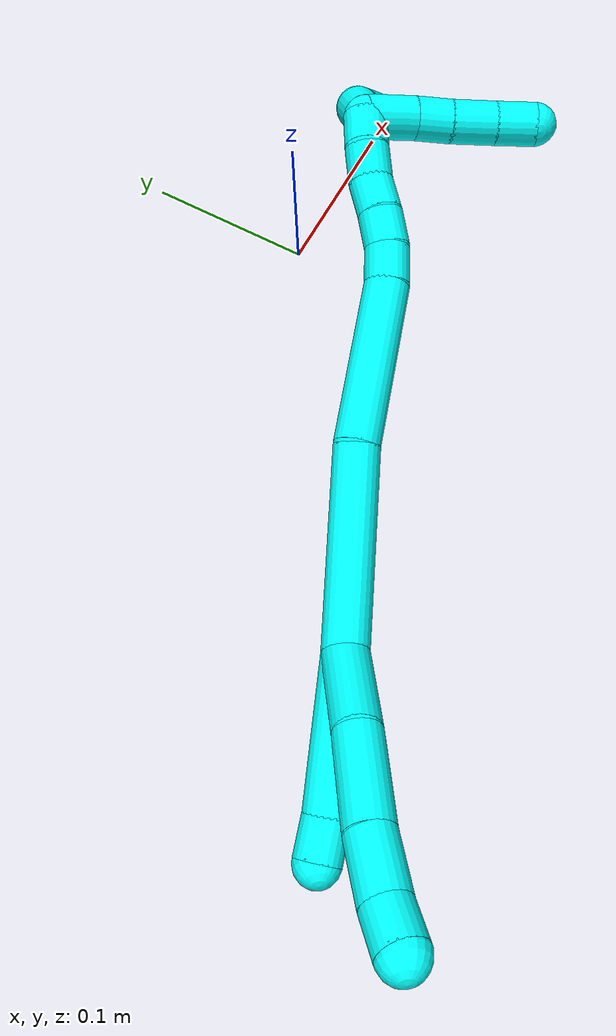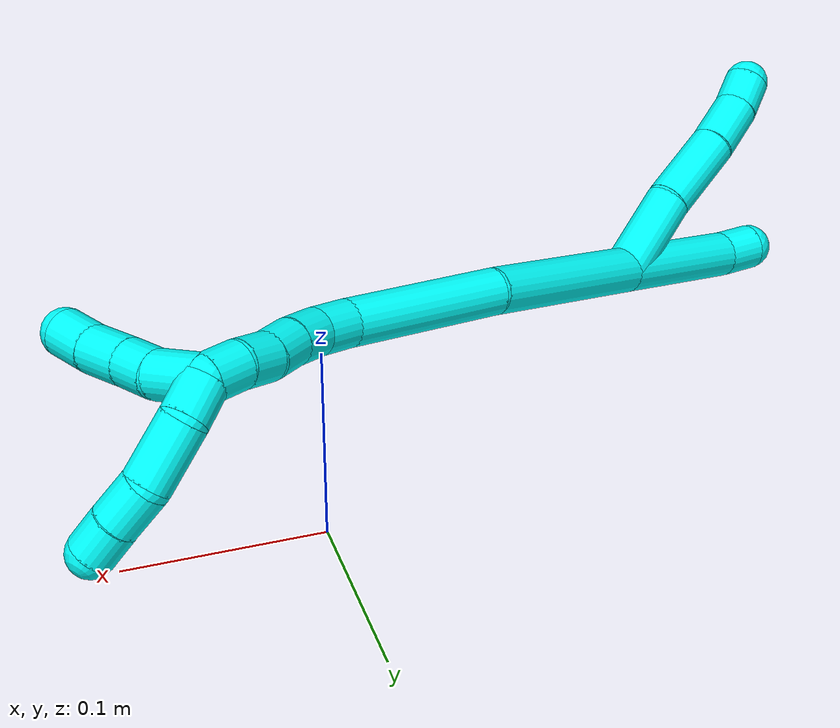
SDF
<sdf version="1.7">
 <world name="default">
  <model name="3">
   <static>0</static>
   <link name="3">
    <collision name="collision-cylinder-e_1_2_8">
     <pose>0.000154 -8.2e-05 0.024659 0.003306 0.006255 1e-05</pose>
     <geometry><cylinder><radius>0.0125</radius><length>0.049318</length></cylinder></geometry>
     <surface>
      <friction><ode><mu>1.16</mu><mu2>1.16</mu2><slip1>0</slip1><slip2>0</slip2></ode></friction>
      <contact><ode><kp>1e+06</kp><kd>1</kd><max_vel>0</max_vel><min_depth>0.001</min_depth></ode></contact>
     </surface>
    </collision>
    <visual name="visual-cylinder-e_1_2_8">
     <pose>0.000154 -8.2e-05 0.024659 0.003306 0.006255 1e-05</pose>
     <geometry><cylinder><radius>0.0125</radius><length>0.049318</length></cylinder></geometry>
     <material><ambient>0.003922 1 0.996078 1</ambient></material>
    </visual>
    <collision name="collision-cylinder-e_2_8_9">
     <pose>-0.0031 -0.001575 0.073221 0.059018 -0.141407 -0.004181</pose>
     <geometry><cylinder><radius>0.0125</radius><length>0.048375</length></cylinder></geometry>
     <surface>
      <friction><ode><mu>1.16</mu><mu2>1.16</mu2><slip1>0</slip1><slip2>0</slip2></ode></friction>
      <contact><ode><kp>1e+06</kp><kd>1</kd><max_vel>0</max_vel><min_depth>0.001</min_depth></ode></contact>
     </surface>
    </collision>
    <visual name="visual-cylinder-e_2_8_9">
     <pose>-0.0031 -0.001575 0.073221 0.059018 -0.141407 -0.004181</pose>
     <geometry><cylinder><radius>0.0125</radius><length>0.048375</length></cylinder></geometry>
     <material><ambient>0.003922 1 0.996078 1</ambient></material>
    </visual>
    <collision name="collision-cylinder-e_3_9_10">
     <pose>-0.008144 -0.005267 0.11253 0.146884 -0.104605 -0.007703</pose>
     <geometry><cylinder><radius>0.0125</radius><length>0.031315</length></cylinder></geometry>
     <surface>
      <friction><ode><mu>1.16</mu><mu2>1.16</mu2><slip1>0</slip1><slip2>0</slip2></ode></friction>
      <contact><ode><kp>1e+06</kp><kd>1</kd><max_vel>0</max_vel><min_depth>0.001</min_depth></ode></contact>
     </surface>
    </collision>
    <visual name="visual-cylinder-e_3_9_10">
     <pose>-0.008144 -0.005267 0.11253 0.146884 -0.104605 -0.007703</pose>
     <geometry><cylinder><radius>0.0125</radius><length>0.031315</length></cylinder></geometry>
     <material><ambient>0.003922 1 0.996078 1</ambient></material>
    </visual>
    <collision name="collision-cylinder-e_4_10_6">
     <pose>-0.009192 -0.009288 0.138268 0.167001 0.055947 0.004684</pose>
     <geometry><cylinder><radius>0.0125</radius><length>0.020992</length></cylinder></geometry>
     <surface>
      <friction><ode><mu>1.16</mu><mu2>1.16</mu2><slip1>0</slip1><slip2>0</slip2></ode></friction>
      <contact><ode><kp>1e+06</kp><kd>1</kd><max_vel>0</max_vel><min_depth>0.001</min_depth></ode></contact>
     </surface>
    </collision>
    <visual name="visual-cylinder-e_4_10_6">
     <pose>-0.009192 -0.009288 0.138268 0.167001 0.055947 0.004684</pose>
     <geometry><cylinder><radius>0.0125</radius><length>0.020992</length></cylinder></geometry>
     <material><ambient>0.003922 1 0.996078 1</ambient></material>
    </visual>
    <collision name="collision-cylinder-e_1_2_11">
     <pose>-0.027167 -0.003998 0.027951 0.142058 -0.766112 -0.057325</pose>
     <geometry><cylinder><radius>0.0125</radius><length>0.078366</length></cylinder></geometry>
     <surface>
      <friction><ode><mu>1.16</mu><mu2>1.16</mu2><slip1>0</slip1><slip2>0</slip2></ode></friction>
      <contact><ode><kp>1e+06</kp><kd>1</kd><max_vel>0</max_vel><min_depth>0.001</min_depth></ode></contact>
     </surface>
    </collision>
    <visual name="visual-cylinder-e_1_2_11">
     <pose>-0.027167 -0.003998 0.027951 0.142058 -0.766112 -0.057325</pose>
     <geometry><cylinder><radius>0.0125</radius><length>0.078366</length></cylinder></geometry>
     <material><ambient>0.003922 1 0.996078 1</ambient></material>
    </visual>
    <collision name="collision-cylinder-e_2_11_5">
     <pose>-0.061088 -0.007575 0.064341 -0.049777 -0.674359 0.017453</pose>
     <geometry><cylinder><radius>0.0125</radius><length>0.021634</length></cylinder></geometry>
     <surface>
      <friction><ode><mu>1.16</mu><mu2>1.16</mu2><slip1>0</slip1><slip2>0</slip2></ode></friction>
      <contact><ode><kp>1e+06</kp><kd>1</kd><max_vel>0</max_vel><min_depth>0.001</min_depth></ode></contact>
     </surface>
    </collision>
    <visual name="visual-cylinder-e_2_11_5">
     <pose>-0.061088 -0.007575 0.064341 -0.049777 -0.674359 0.017453</pose>
     <geometry><cylinder><radius>0.0125</radius><length>0.021634</length></cylinder></geometry>
     <material><ambient>0.003922 1 0.996078 1</ambient></material>
    </visual>
    <collision name="collision-cylinder-e_1_2_12">
     <pose>0.03641 0.008818 -0.037061 -2.90801 0.762776 -2.57234</pose>
     <geometry><cylinder><radius>0.0125</radius><length>0.105394</length></cylinder></geometry>
     <surface>
      <friction><ode><mu>1.16</mu><mu2>1.16</mu2><slip1>0</slip1><slip2>0</slip2></ode></friction>
      <contact><ode><kp>1e+06</kp><kd>1</kd><max_vel>0</max_vel><min_depth>0.001</min_depth></ode></contact>
     </surface>
    </collision>
    <visual name="visual-cylinder-e_1_2_12">
     <pose>0.03641 0.008818 -0.037061 -2.90801 0.762776 -2.57234</pose>
     <geometry><cylinder><radius>0.0125</radius><length>0.105394</length></cylinder></geometry>
     <material><ambient>0.003922 1 0.996078 1</ambient></material>
    </visual>
    <collision name="collision-cylinder-e_2_12_13">
     <pose>0.10303 0.018107 -0.108616 -3.12794 0.719249 -3.10529</pose>
     <geometry><cylinder><radius>0.0125</radius><length>0.09171</length></cylinder></geometry>
     <surface>
      <friction><ode><mu>1.16</mu><mu2>1.16</mu2><slip1>0</slip1><slip2>0</slip2></ode></friction>
      <contact><ode><kp>1e+06</kp><kd>1</kd><max_vel>0</max_vel><min_depth>0.001</min_depth></ode></contact>
     </surface>
    </collision>
    <visual name="visual-cylinder-e_2_12_13">
     <pose>0.10303 0.018107 -0.108616 -3.12794 0.719249 -3.10529</pose>
     <geometry><cylinder><radius>0.0125</radius><length>0.09171</length></cylinder></geometry>
     <material><ambient>0.003922 1 0.996078 1</ambient></material>
    </visual>
    <collision name="collision-cylinder-e_3_13_14">
     <pose>0.140005 0.020502 -0.151147 -2.9066 0.685943 -2.50307</pose>
     <geometry><cylinder><radius>0.0125</radius><length>0.021362</length></cylinder></geometry>
     <surface>
      <friction><ode><mu>1.16</mu><mu2>1.16</mu2><slip1>0</slip1><slip2>0</slip2></ode></friction>
      <contact><ode><kp>1e+06</kp><kd>1</kd><max_vel>0</max_vel><min_depth>0.001</min_depth></ode></contact>
     </surface>
    </collision>
    <visual name="visual-cylinder-e_3_13_14">
     <pose>0.140005 0.020502 -0.151147 -2.9066 0.685943 -2.50307</pose>
     <geometry><cylinder><radius>0.0125</radius><length>0.021362</length></cylinder></geometry>
     <material><ambient>0.003922 1 0.996078 1</ambient></material>
    </visual>
    <collision name="collision-cylinder-e_4_14_15">
     <pose>0.15252 0.026176 -0.166694 -2.67843 0.600607 -1.83995</pose>
     <geometry><cylinder><radius>0.0125</radius><length>0.020347</length></cylinder></geometry>
     <surface>
      <friction><ode><mu>1.16</mu><mu2>1.16</mu2><slip1>0</slip1><slip2>0</slip2></ode></friction>
      <contact><ode><kp>1e+06</kp><kd>1</kd><max_vel>0</max_vel><min_depth>0.001</min_depth></ode></contact>
     </surface>
    </collision>
    <visual name="visual-cylinder-e_4_14_15">
     <pose>0.15252 0.026176 -0.166694 -2.67843 0.600607 -1.83995</pose>
     <geometry><cylinder><radius>0.0125</radius><length>0.020347</length></cylinder></geometry>
     <material><ambient>0.003922 1 0.996078 1</ambient></material>
    </visual>
    <collision name="collision-cylinder-e_5_15_16">
     <pose>0.163049 0.033916 -0.182097 -2.67368 0.495409 -1.63013</pose>
     <geometry><cylinder><radius>0.0125</radius><length>0.020107</length></cylinder></geometry>
     <surface>
      <friction><ode><mu>1.16</mu><mu2>1.16</mu2><slip1>0</slip1><slip2>0</slip2></ode></friction>
      <contact><ode><kp>1e+06</kp><kd>1</kd><max_vel>0</max_vel><min_depth>0.001</min_depth></ode></contact>
     </surface>
    </collision>
    <visual name="visual-cylinder-e_5_15_16">
     <pose>0.163049 0.033916 -0.182097 -2.67368 0.495409 -1.63013</pose>
     <geometry><cylinder><radius>0.0125</radius><length>0.020107</length></cylinder></geometry>
     <material><ambient>0.003922 1 0.996078 1</ambient></material>
    </visual>
    <collision name="collision-cylinder-e_6_16_17">
     <pose>0.174152 0.041078 -0.197173 -2.72556 0.677999 -2.06283</pose>
     <geometry><cylinder><radius>0.0125</radius><length>0.02016</length></cylinder></geometry>
     <surface>
      <friction><ode><mu>1.16</mu><mu2>1.16</mu2><slip1>0</slip1><slip2>0</slip2></ode></friction>
      <contact><ode><kp>1e+06</kp><kd>1</kd><max_vel>0</max_vel><min_depth>0.001</min_depth></ode></contact>
     </surface>
    </collision>
    <visual name="visual-cylinder-e_6_16_17">
     <pose>0.174152 0.041078 -0.197173 -2.72556 0.677999 -2.06283</pose>
     <geometry><cylinder><radius>0.0125</radius><length>0.02016</length></cylinder></geometry>
     <material><ambient>0.003922 1 0.996078 1</ambient></material>
    </visual>
    <collision name="collision-cylinder-e_7_17_1">
     <pose>0.186125 0.046191 -0.212939 -2.91928 0.57071 -2.41446</pose>
     <geometry><cylinder><radius>0.0125</radius><length>0.020919</length></cylinder></geometry>
     <surface>
      <friction><ode><mu>1.16</mu><mu2>1.16</mu2><slip1>0</slip1><slip2>0</slip2></ode></friction>
      <contact><ode><kp>1e+06</kp><kd>1</kd><max_vel>0</max_vel><min_depth>0.001</min_depth></ode></contact>
     </surface>
    </collision>
    <visual name="visual-cylinder-e_7_17_1">
     <pose>0.186125 0.046191 -0.212939 -2.91928 0.57071 -2.41446</pose>
     <geometry><cylinder><radius>0.0125</radius><length>0.020919</length></cylinder></geometry>
     <material><ambient>0.003922 1 0.996078 1</ambient></material>
    </visual>
    <collision name="collision-cylinder-e_1_1_18">
     <pose>0.196063 0.034115 -0.224075 1.75078 0.292328 0.349241</pose>
     <geometry><cylinder><radius>0.0125</radius><length>0.029756</length></cylinder></geometry>
     <surface>
      <friction><ode><mu>1.16</mu><mu2>1.16</mu2><slip1>0</slip1><slip2>0</slip2></ode></friction>
      <contact><ode><kp>1e+06</kp><kd>1</kd><max_vel>0</max_vel><min_depth>0.001</min_depth></ode></contact>
     </surface>
    </collision>
    <visual name="visual-cylinder-e_1_1_18">
     <pose>0.196063 0.034115 -0.224075 1.75078 0.292328 0.349241</pose>
     <geometry><cylinder><radius>0.0125</radius><length>0.029756</length></cylinder></geometry>
     <material><ambient>0.003922 1 0.996078 1</ambient></material>
    </visual>
    <collision name="collision-cylinder-e_2_18_19">
     <pose>0.20358 0.010123 -0.226102 1.51835 0.312679 0.296934</pose>
     <geometry><cylinder><radius>0.0125</radius><length>0.020998</length></cylinder></geometry>
     <surface>
      <friction><ode><mu>1.16</mu><mu2>1.16</mu2><slip1>0</slip1><slip2>0</slip2></ode></friction>
      <contact><ode><kp>1e+06</kp><kd>1</kd><max_vel>0</max_vel><min_depth>0.001</min_depth></ode></contact>
     </surface>
    </collision>
    <visual name="visual-cylinder-e_2_18_19">
     <pose>0.20358 0.010123 -0.226102 1.51835 0.312679 0.296934</pose>
     <geometry><cylinder><radius>0.0125</radius><length>0.020998</length></cylinder></geometry>
     <material><ambient>0.003922 1 0.996078 1</ambient></material>
    </visual>
    <collision name="collision-cylinder-e_3_19_20">
     <pose>0.211309 -0.012139 -0.22543 1.55876 0.351027 0.346913</pose>
     <geometry><cylinder><radius>0.0125</radius><length>0.02617</length></cylinder></geometry>
     <surface>
      <friction><ode><mu>1.16</mu><mu2>1.16</mu2><slip1>0</slip1><slip2>0</slip2></ode></friction>
      <contact><ode><kp>1e+06</kp><kd>1</kd><max_vel>0</max_vel><min_depth>0.001</min_depth></ode></contact>
     </surface>
    </collision>
    <visual name="visual-cylinder-e_3_19_20">
     <pose>0.211309 -0.012139 -0.22543 1.55876 0.351027 0.346913</pose>
     <geometry><cylinder><radius>0.0125</radius><length>0.02617</length></cylinder></geometry>
     <material><ambient>0.003922 1 0.996078 1</ambient></material>
    </visual>
    <collision name="collision-cylinder-e_4_20_4">
     <pose>0.22024 -0.035005 -0.224036 1.45353 0.394243 0.351475</pose>
     <geometry><cylinder><radius>0.0125</radius><length>0.023077</length></cylinder></geometry>
     <surface>
      <friction><ode><mu>1.16</mu><mu2>1.16</mu2><slip1>0</slip1><slip2>0</slip2></ode></friction>
      <contact><ode><kp>1e+06</kp><kd>1</kd><max_vel>0</max_vel><min_depth>0.001</min_depth></ode></contact>
     </surface>
    </collision>
    <visual name="visual-cylinder-e_4_20_4">
     <pose>0.22024 -0.035005 -0.224036 1.45353 0.394243 0.351475</pose>
     <geometry><cylinder><radius>0.0125</radius><length>0.023077</length></cylinder></geometry>
     <material><ambient>0.003922 1 0.996078 1</ambient></material>
    </visual>
    <collision name="collision-cylinder-e_1_1_21">
     <pose>0.190453 0.048521 -0.231961 -3.10433 -0.125953 2.56697</pose>
     <geometry><cylinder><radius>0.0125</radius><length>0.021055</length></cylinder></geometry>
     <surface>
      <friction><ode><mu>1.16</mu><mu2>1.16</mu2><slip1>0</slip1><slip2>0</slip2></ode></friction>
      <contact><ode><kp>1e+06</kp><kd>1</kd><max_vel>0</max_vel><min_depth>0.001</min_depth></ode></contact>
     </surface>
    </collision>
    <visual name="visual-cylinder-e_1_1_21">
     <pose>0.190453 0.048521 -0.231961 -3.10433 -0.125953 2.56697</pose>
     <geometry><cylinder><radius>0.0125</radius><length>0.021055</length></cylinder></geometry>
     <material><ambient>0.003922 1 0.996078 1</ambient></material>
    </visual>
    <collision name="collision-cylinder-e_2_21_22">
     <pose>0.185316 0.044223 -0.258467 2.85777 -0.224067 -1.33409</pose>
     <geometry><cylinder><radius>0.0125</radius><length>0.034336</length></cylinder></geometry>
     <surface>
      <friction><ode><mu>1.16</mu><mu2>1.16</mu2><slip1>0</slip1><slip2>0</slip2></ode></friction>
      <contact><ode><kp>1e+06</kp><kd>1</kd><max_vel>0</max_vel><min_depth>0.001</min_depth></ode></contact>
     </surface>
    </collision>
    <visual name="visual-cylinder-e_2_21_22">
     <pose>0.185316 0.044223 -0.258467 2.85777 -0.224067 -1.33409</pose>
     <geometry><cylinder><radius>0.0125</radius><length>0.034336</length></cylinder></geometry>
     <material><ambient>0.003922 1 0.996078 1</ambient></material>
    </visual>
    <collision name="collision-cylinder-e_3_22_23">
     <pose>0.179374 0.032567 -0.284107 2.51223 -0.177736 -0.534393</pose>
     <geometry><cylinder><radius>0.0125</radius><length>0.024058</length></cylinder></geometry>
     <surface>
      <friction><ode><mu>1.16</mu><mu2>1.16</mu2><slip1>0</slip1><slip2>0</slip2></ode></friction>
      <contact><ode><kp>1e+06</kp><kd>1</kd><max_vel>0</max_vel><min_depth>0.001</min_depth></ode></contact>
     </surface>
    </collision>
    <visual name="visual-cylinder-e_3_22_23">
     <pose>0.179374 0.032567 -0.284107 2.51223 -0.177736 -0.534393</pose>
     <geometry><cylinder><radius>0.0125</radius><length>0.024058</length></cylinder></geometry>
     <material><ambient>0.003922 1 0.996078 1</ambient></material>
    </visual>
    <collision name="collision-cylinder-e_4_23_3">
     <pose>0.174988 0.019378 -0.30154 2.47227 -0.221734 -0.619644</pose>
     <geometry><cylinder><radius>0.0125</radius><length>0.020551</length></cylinder></geometry>
     <surface>
      <friction><ode><mu>1.16</mu><mu2>1.16</mu2><slip1>0</slip1><slip2>0</slip2></ode></friction>
      <contact><ode><kp>1e+06</kp><kd>1</kd><max_vel>0</max_vel><min_depth>0.001</min_depth></ode></contact>
     </surface>
    </collision>
    <visual name="visual-cylinder-e_4_23_3">
     <pose>0.174988 0.019378 -0.30154 2.47227 -0.221734 -0.619644</pose>
     <geometry><cylinder><radius>0.0125</radius><length>0.020551</length></cylinder></geometry>
     <material><ambient>0.003922 1 0.996078 1</ambient></material>
    </visual>
    <collision name="collision-sphere-3">
     <pose>0.172728 0.013159 -0.309401 0 -0 0</pose>
     <geometry><sphere><radius>0.0125</radius></sphere></geometry>
     <surface>
      <friction><ode><mu>1.16</mu><mu2>1.16</mu2><slip1>0</slip1><slip2>0</slip2></ode></friction>
      <contact><ode><kp>1e+06</kp><kd>1</kd><max_vel>0</max_vel><min_depth>0.001</min_depth></ode></contact>
     </surface>
    </collision>
    <visual name="visual-sphere-3">
     <pose>0.172728 0.013159 -0.309401 0 -0 0</pose>
     <geometry><sphere><radius>0.0125</radius></sphere></geometry>
     <material><ambient>0.003922 1 0.996078 1</ambient></material>
    </visual>
    <collision name="collision-sphere-23">
     <pose>0.177248 0.025598 -0.293678 0 -0 0</pose>
     <geometry><sphere><radius>0.0125</radius></sphere></geometry>
     <surface>
      <friction><ode><mu>1.16</mu><mu2>1.16</mu2><slip1>0</slip1><slip2>0</slip2></ode></friction>
      <contact><ode><kp>1e+06</kp><kd>1</kd><max_vel>0</max_vel><min_depth>0.001</min_depth></ode></contact>
     </surface>
    </collision>
    <visual name="visual-sphere-23">
     <pose>0.177248 0.025598 -0.293678 0 -0 0</pose>
     <geometry><sphere><radius>0.0125</radius></sphere></geometry>
     <material><ambient>0.003922 1 0.996078 1</ambient></material>
    </visual>
    <collision name="collision-sphere-22">
     <pose>0.181501 0.039536 -0.274536 0 -0 0</pose>
     <geometry><sphere><radius>0.0125</radius></sphere></geometry>
     <surface>
      <friction><ode><mu>1.16</mu><mu2>1.16</mu2><slip1>0</slip1><slip2>0</slip2></ode></friction>
      <contact><ode><kp>1e+06</kp><kd>1</kd><max_vel>0</max_vel><min_depth>0.001</min_depth></ode></contact>
     </surface>
    </collision>
    <visual name="visual-sphere-22">
     <pose>0.181501 0.039536 -0.274536 0 -0 0</pose>
     <geometry><sphere><radius>0.0125</radius></sphere></geometry>
     <material><ambient>0.003922 1 0.996078 1</ambient></material>
    </visual>
    <collision name="collision-sphere-21">
     <pose>0.18913 0.04891 -0.242399 0 -0 0</pose>
     <geometry><sphere><radius>0.0125</radius></sphere></geometry>
     <surface>
      <friction><ode><mu>1.16</mu><mu2>1.16</mu2><slip1>0</slip1><slip2>0</slip2></ode></friction>
      <contact><ode><kp>1e+06</kp><kd>1</kd><max_vel>0</max_vel><min_depth>0.001</min_depth></ode></contact>
     </surface>
    </collision>
    <visual name="visual-sphere-21">
     <pose>0.18913 0.04891 -0.242399 0 -0 0</pose>
     <geometry><sphere><radius>0.0125</radius></sphere></geometry>
     <material><ambient>0.003922 1 0.996078 1</ambient></material>
    </visual>
    <collision name="collision-sphere-4">
     <pose>0.224672 -0.045586 -0.222789 0 -0 0</pose>
     <geometry><sphere><radius>0.0125</radius></sphere></geometry>
     <surface>
      <friction><ode><mu>1.16</mu><mu2>1.16</mu2><slip1>0</slip1><slip2>0</slip2></ode></friction>
      <contact><ode><kp>1e+06</kp><kd>1</kd><max_vel>0</max_vel><min_depth>0.001</min_depth></ode></contact>
     </surface>
    </collision>
    <visual name="visual-sphere-4">
     <pose>0.224672 -0.045586 -0.222789 0 -0 0</pose>
     <geometry><sphere><radius>0.0125</radius></sphere></geometry>
     <material><ambient>0.003922 1 0.996078 1</ambient></material>
    </visual>
    <collision name="collision-sphere-20">
     <pose>0.215808 -0.024425 -0.225282 0 -0 0</pose>
     <geometry><sphere><radius>0.0125</radius></sphere></geometry>
     <surface>
      <friction><ode><mu>1.16</mu><mu2>1.16</mu2><slip1>0</slip1><slip2>0</slip2></ode></friction>
      <contact><ode><kp>1e+06</kp><kd>1</kd><max_vel>0</max_vel><min_depth>0.001</min_depth></ode></contact>
     </surface>
    </collision>
    <visual name="visual-sphere-20">
     <pose>0.215808 -0.024425 -0.225282 0 -0 0</pose>
     <geometry><sphere><radius>0.0125</radius></sphere></geometry>
     <material><ambient>0.003922 1 0.996078 1</ambient></material>
    </visual>
    <collision name="collision-sphere-11">
     <pose>-0.054334 -0.007995 0.055903 0 -0 0</pose>
     <geometry><sphere><radius>0.0125</radius></sphere></geometry>
     <surface>
      <friction><ode><mu>1.16</mu><mu2>1.16</mu2><slip1>0</slip1><slip2>0</slip2></ode></friction>
      <contact><ode><kp>1e+06</kp><kd>1</kd><max_vel>0</max_vel><min_depth>0.001</min_depth></ode></contact>
     </surface>
    </collision>
    <visual name="visual-sphere-11">
     <pose>-0.054334 -0.007995 0.055903 0 -0 0</pose>
     <geometry><sphere><radius>0.0125</radius></sphere></geometry>
     <material><ambient>0.003922 1 0.996078 1</ambient></material>
    </visual>
    <collision name="collision-sphere-6">
     <pose>-0.008605 -0.01103 0.148602 0 -0 0</pose>
     <geometry><sphere><radius>0.0125</radius></sphere></geometry>
     <surface>
      <friction><ode><mu>1.16</mu><mu2>1.16</mu2><slip1>0</slip1><slip2>0</slip2></ode></friction>
      <contact><ode><kp>1e+06</kp><kd>1</kd><max_vel>0</max_vel><min_depth>0.001</min_depth></ode></contact>
     </surface>
    </collision>
    <visual name="visual-sphere-6">
     <pose>-0.008605 -0.01103 0.148602 0 -0 0</pose>
     <geometry><sphere><radius>0.0125</radius></sphere></geometry>
     <material><ambient>0.003922 1 0.996078 1</ambient></material>
    </visual>
    <collision name="collision-sphere-10">
     <pose>-0.009779 -0.007546 0.127934 0 -0 0</pose>
     <geometry><sphere><radius>0.0125</radius></sphere></geometry>
     <surface>
      <friction><ode><mu>1.16</mu><mu2>1.16</mu2><slip1>0</slip1><slip2>0</slip2></ode></friction>
      <contact><ode><kp>1e+06</kp><kd>1</kd><max_vel>0</max_vel><min_depth>0.001</min_depth></ode></contact>
     </surface>
    </collision>
    <visual name="visual-sphere-10">
     <pose>-0.009779 -0.007546 0.127934 0 -0 0</pose>
     <geometry><sphere><radius>0.0125</radius></sphere></geometry>
     <material><ambient>0.003922 1 0.996078 1</ambient></material>
    </visual>
    <collision name="collision-sphere-9">
     <pose>-0.006509 -0.002988 0.097126 0 -0 0</pose>
     <geometry><sphere><radius>0.0125</radius></sphere></geometry>
     <surface>
      <friction><ode><mu>1.16</mu><mu2>1.16</mu2><slip1>0</slip1><slip2>0</slip2></ode></friction>
      <contact><ode><kp>1e+06</kp><kd>1</kd><max_vel>0</max_vel><min_depth>0.001</min_depth></ode></contact>
     </surface>
    </collision>
    <visual name="visual-sphere-9">
     <pose>-0.006509 -0.002988 0.097126 0 -0 0</pose>
     <geometry><sphere><radius>0.0125</radius></sphere></geometry>
     <material><ambient>0.003922 1 0.996078 1</ambient></material>
    </visual>
    <collision name="collision-sphere-2">
     <geometry><sphere><radius>0.0125</radius></sphere></geometry>
     <surface>
      <friction><ode><mu>1.16</mu><mu2>1.16</mu2><slip1>0</slip1><slip2>0</slip2></ode></friction>
      <contact><ode><kp>1e+06</kp><kd>1</kd><max_vel>0</max_vel><min_depth>0.001</min_depth></ode></contact>
     </surface>
    </collision>
    <visual name="visual-sphere-2">
     <geometry><sphere><radius>0.0125</radius></sphere></geometry>
     <material><ambient>0.003922 1 0.996078 1</ambient></material>
    </visual>
    <collision name="collision-sphere-19">
     <pose>0.20681 0.000147 -0.225578 0 -0 0</pose>
     <geometry><sphere><radius>0.0125</radius></sphere></geometry>
     <surface>
      <friction><ode><mu>1.16</mu><mu2>1.16</mu2><slip1>0</slip1><slip2>0</slip2></ode></friction>
      <contact><ode><kp>1e+06</kp><kd>1</kd><max_vel>0</max_vel><min_depth>0.001</min_depth></ode></contact>
     </surface>
    </collision>
    <visual name="visual-sphere-19">
     <pose>0.20681 0.000147 -0.225578 0 -0 0</pose>
     <geometry><sphere><radius>0.0125</radius></sphere></geometry>
     <material><ambient>0.003922 1 0.996078 1</ambient></material>
    </visual>
    <collision name="collision-sphere-8">
     <pose>0.000308 -0.000163 0.049317 0 -0 0</pose>
     <geometry><sphere><radius>0.0125</radius></sphere></geometry>
     <surface>
      <friction><ode><mu>1.16</mu><mu2>1.16</mu2><slip1>0</slip1><slip2>0</slip2></ode></friction>
      <contact><ode><kp>1e+06</kp><kd>1</kd><max_vel>0</max_vel><min_depth>0.001</min_depth></ode></contact>
     </surface>
    </collision>
    <visual name="visual-sphere-8">
     <pose>0.000308 -0.000163 0.049317 0 -0 0</pose>
     <geometry><sphere><radius>0.0125</radius></sphere></geometry>
     <material><ambient>0.003922 1 0.996078 1</ambient></material>
    </visual>
    <collision name="collision-sphere-5">
     <pose>-0.067842 -0.007155 0.07278 0 -0 0</pose>
     <geometry><sphere><radius>0.0125</radius></sphere></geometry>
     <surface>
      <friction><ode><mu>1.16</mu><mu2>1.16</mu2><slip1>0</slip1><slip2>0</slip2></ode></friction>
      <contact><ode><kp>1e+06</kp><kd>1</kd><max_vel>0</max_vel><min_depth>0.001</min_depth></ode></contact>
     </surface>
    </collision>
    <visual name="visual-sphere-5">
     <pose>-0.067842 -0.007155 0.07278 0 -0 0</pose>
     <geometry><sphere><radius>0.0125</radius></sphere></geometry>
     <material><ambient>0.003922 1 0.996078 1</ambient></material>
    </visual>
    <collision name="collision-sphere-12">
     <pose>0.07282 0.017636 -0.074122 0 -0 0</pose>
     <geometry><sphere><radius>0.0125</radius></sphere></geometry>
     <surface>
      <friction><ode><mu>1.16</mu><mu2>1.16</mu2><slip1>0</slip1><slip2>0</slip2></ode></friction>
      <contact><ode><kp>1e+06</kp><kd>1</kd><max_vel>0</max_vel><min_depth>0.001</min_depth></ode></contact>
     </surface>
    </collision>
    <visual name="visual-sphere-12">
     <pose>0.07282 0.017636 -0.074122 0 -0 0</pose>
     <geometry><sphere><radius>0.0125</radius></sphere></geometry>
     <material><ambient>0.003922 1 0.996078 1</ambient></material>
    </visual>
    <collision name="collision-sphere-13">
     <pose>0.13324 0.018578 -0.143109 0 -0 0</pose>
     <geometry><sphere><radius>0.0125</radius></sphere></geometry>
     <surface>
      <friction><ode><mu>1.16</mu><mu2>1.16</mu2><slip1>0</slip1><slip2>0</slip2></ode></friction>
      <contact><ode><kp>1e+06</kp><kd>1</kd><max_vel>0</max_vel><min_depth>0.001</min_depth></ode></contact>
     </surface>
    </collision>
    <visual name="visual-sphere-13">
     <pose>0.13324 0.018578 -0.143109 0 -0 0</pose>
     <geometry><sphere><radius>0.0125</radius></sphere></geometry>
     <material><ambient>0.003922 1 0.996078 1</ambient></material>
    </visual>
    <collision name="collision-sphere-14">
     <pose>0.146771 0.022427 -0.159185 0 -0 0</pose>
     <geometry><sphere><radius>0.0125</radius></sphere></geometry>
     <surface>
      <friction><ode><mu>1.16</mu><mu2>1.16</mu2><slip1>0</slip1><slip2>0</slip2></ode></friction>
      <contact><ode><kp>1e+06</kp><kd>1</kd><max_vel>0</max_vel><min_depth>0.001</min_depth></ode></contact>
     </surface>
    </collision>
    <visual name="visual-sphere-14">
     <pose>0.146771 0.022427 -0.159185 0 -0 0</pose>
     <geometry><sphere><radius>0.0125</radius></sphere></geometry>
     <material><ambient>0.003922 1 0.996078 1</ambient></material>
    </visual>
    <collision name="collision-sphere-15">
     <pose>0.15827 0.029926 -0.174203 0 -0 0</pose>
     <geometry><sphere><radius>0.0125</radius></sphere></geometry>
     <surface>
      <friction><ode><mu>1.16</mu><mu2>1.16</mu2><slip1>0</slip1><slip2>0</slip2></ode></friction>
      <contact><ode><kp>1e+06</kp><kd>1</kd><max_vel>0</max_vel><min_depth>0.001</min_depth></ode></contact>
     </surface>
    </collision>
    <visual name="visual-sphere-15">
     <pose>0.15827 0.029926 -0.174203 0 -0 0</pose>
     <geometry><sphere><radius>0.0125</radius></sphere></geometry>
     <material><ambient>0.003922 1 0.996078 1</ambient></material>
    </visual>
    <collision name="collision-sphere-16">
     <pose>0.167829 0.037905 -0.189992 0 -0 0</pose>
     <geometry><sphere><radius>0.0125</radius></sphere></geometry>
     <surface>
      <friction><ode><mu>1.16</mu><mu2>1.16</mu2><slip1>0</slip1><slip2>0</slip2></ode></friction>
      <contact><ode><kp>1e+06</kp><kd>1</kd><max_vel>0</max_vel><min_depth>0.001</min_depth></ode></contact>
     </surface>
    </collision>
    <visual name="visual-sphere-16">
     <pose>0.167829 0.037905 -0.189992 0 -0 0</pose>
     <geometry><sphere><radius>0.0125</radius></sphere></geometry>
     <material><ambient>0.003922 1 0.996078 1</ambient></material>
    </visual>
    <collision name="collision-sphere-17">
     <pose>0.180474 0.044251 -0.204354 0 -0 0</pose>
     <geometry><sphere><radius>0.0125</radius></sphere></geometry>
     <surface>
      <friction><ode><mu>1.16</mu><mu2>1.16</mu2><slip1>0</slip1><slip2>0</slip2></ode></friction>
      <contact><ode><kp>1e+06</kp><kd>1</kd><max_vel>0</max_vel><min_depth>0.001</min_depth></ode></contact>
     </surface>
    </collision>
    <visual name="visual-sphere-17">
     <pose>0.180474 0.044251 -0.204354 0 -0 0</pose>
     <geometry><sphere><radius>0.0125</radius></sphere></geometry>
     <material><ambient>0.003922 1 0.996078 1</ambient></material>
    </visual>
    <collision name="collision-sphere-1">
     <pose>0.191775 0.048132 -0.221524 0 -0 0</pose>
     <geometry><sphere><radius>0.0125</radius></sphere></geometry>
     <surface>
      <friction><ode><mu>1.16</mu><mu2>1.16</mu2><slip1>0</slip1><slip2>0</slip2></ode></friction>
      <contact><ode><kp>1e+06</kp><kd>1</kd><max_vel>0</max_vel><min_depth>0.001</min_depth></ode></contact>
     </surface>
    </collision>
    <visual name="visual-sphere-1">
     <pose>0.191775 0.048132 -0.221524 0 -0 0</pose>
     <geometry><sphere><radius>0.0125</radius></sphere></geometry>
     <material><ambient>0.003922 1 0.996078 1</ambient></material>
    </visual>
    <collision name="collision-sphere-18">
     <pose>0.200351 0.020099 -0.226625 0 -0 0</pose>
     <geometry><sphere><radius>0.0125</radius></sphere></geometry>
     <surface>
      <friction><ode><mu>1.16</mu><mu2>1.16</mu2><slip1>0</slip1><slip2>0</slip2></ode></friction>
      <contact><ode><kp>1e+06</kp><kd>1</kd><max_vel>0</max_vel><min_depth>0.001</min_depth></ode></contact>
     </surface>
    </collision>
    <visual name="visual-sphere-18">
     <pose>0.200351 0.020099 -0.226625 0 -0 0</pose>
     <geometry><sphere><radius>0.0125</radius></sphere></geometry>
     <material><ambient>0.003922 1 0.996078 1</ambient></material>
    </visual>
    <inertial>
     <pose>0.086704 0.011925 -0.08945 0 -0 0</pose>
     <mass>0.75</mass>
     <inertia>
      <ixx>-8.5e-05</ixx>
      <ixy>0</ixy>
      <ixz>0</ixz>
      <iyy>0.000178</iyy>
      <iyz>0</iyz>
      <izz>-9.6e-05</izz>
     </inertia>
    </inertial>
   </link>
   <pose>-0.211666 -0.145593 0.030583 0.675132 -0.870606 -0.194784</pose>
  </model>
 </world>
</sdf>
